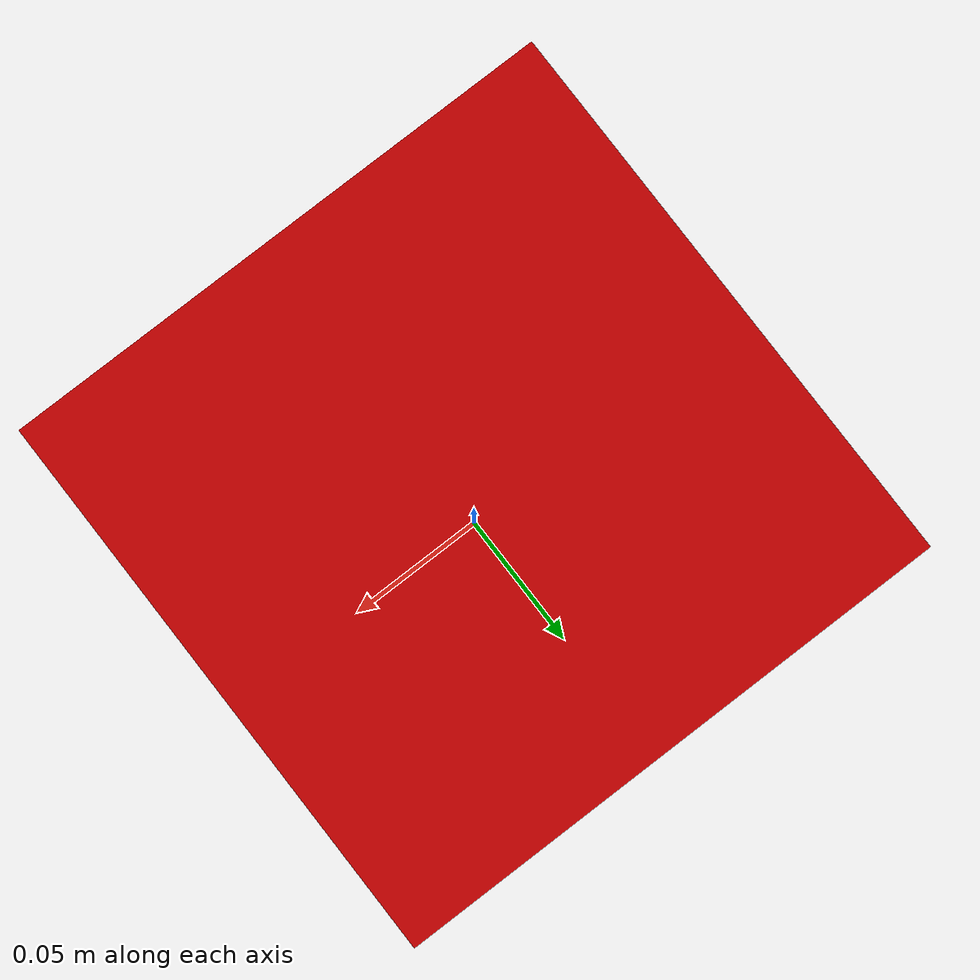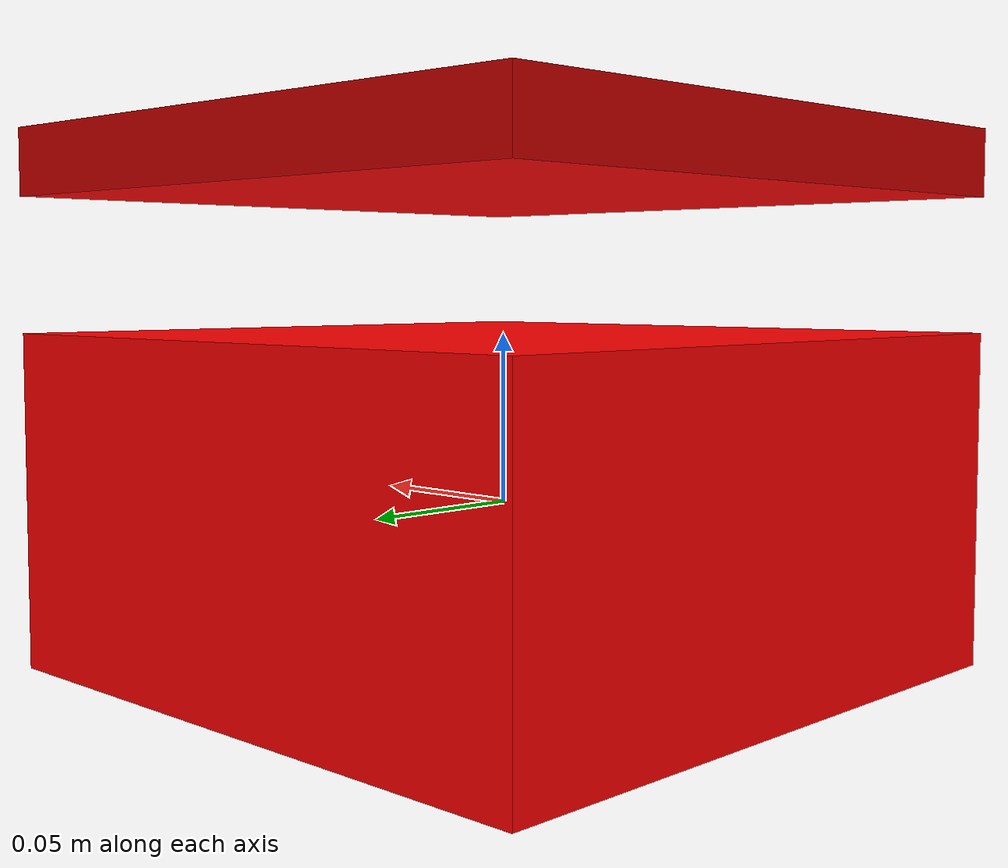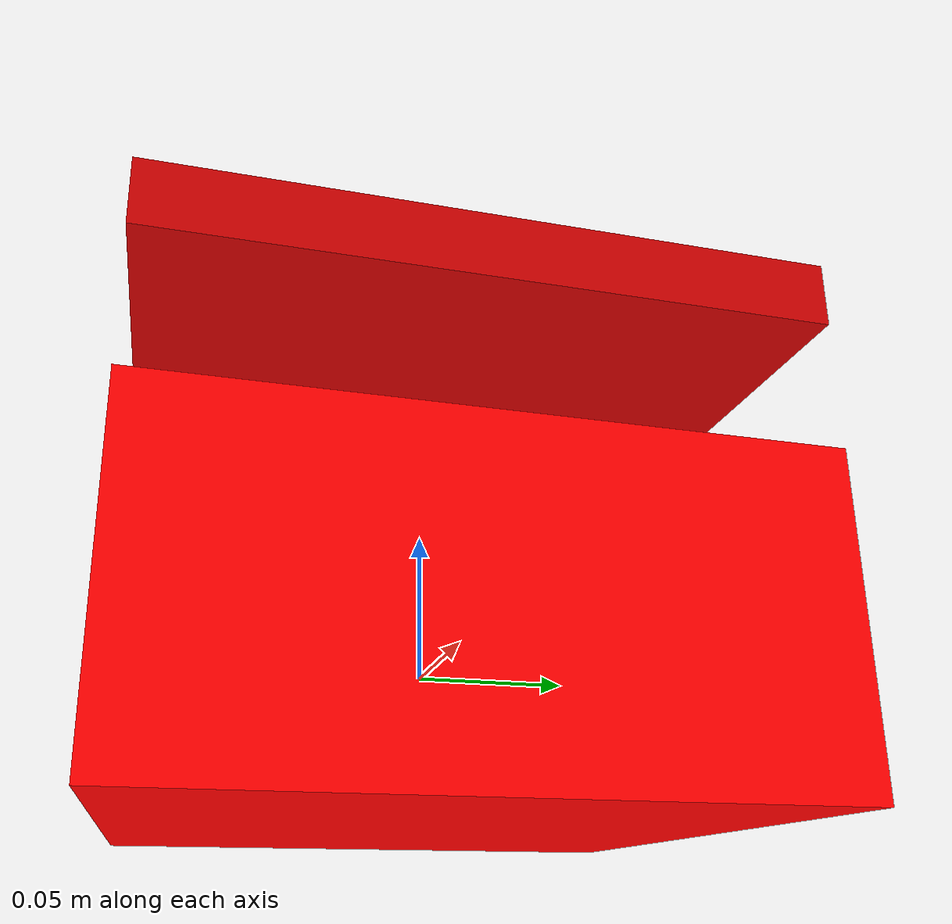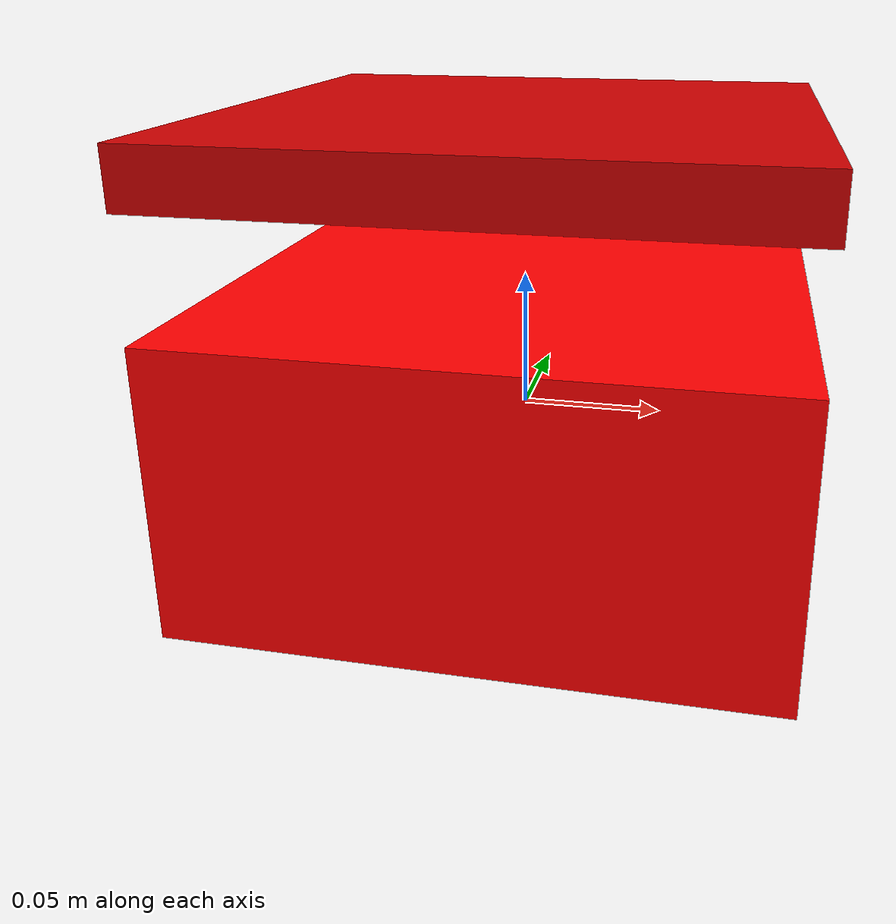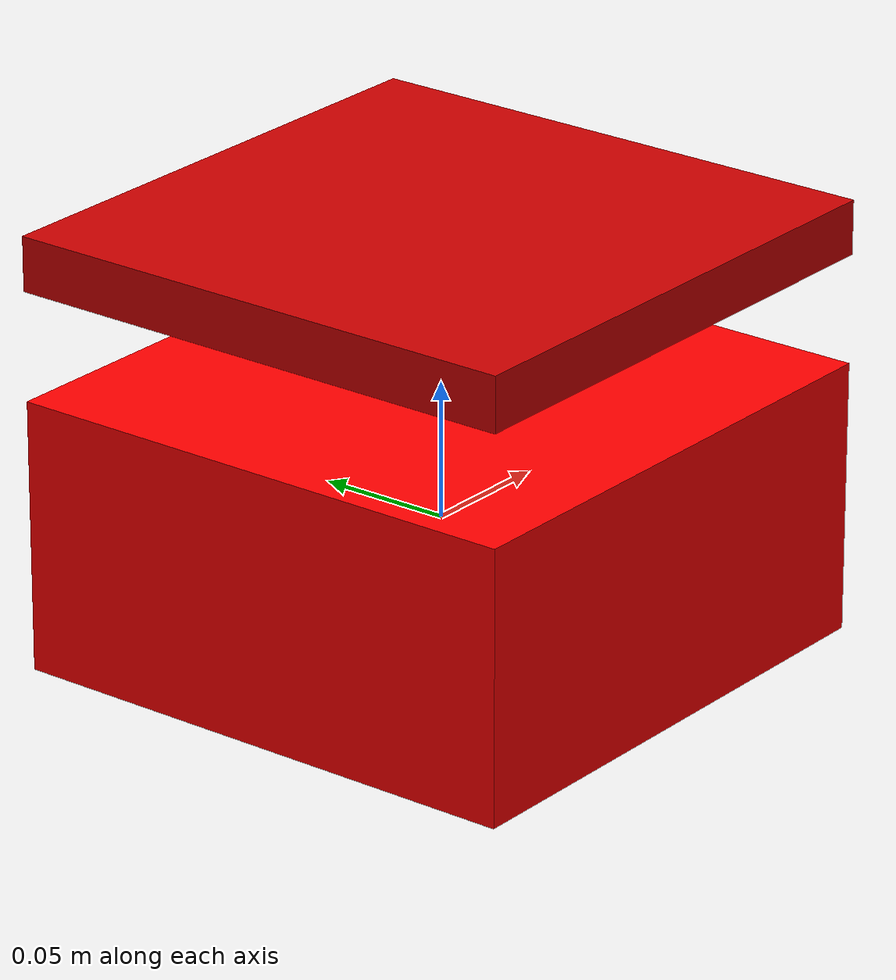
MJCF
<mujoco model="articulated_box">
  <worldbody>
    <body name="box_base" pos="0 0 0">
      <geom name="box_base_geom" type="box" size="0.1 0.1 0.05" rgba="1 0 0 1"/>

      <body name="box_lid" pos="0 0 0.1">
        <joint name="lid_joint" type="hinge" axis="1 0 0" range="0 1.57"/>
        <geom name="box_lid_geom" type="box" size="0.1 0.1 0.01" rgba="0.8 0 0 1"/>
      </body>
    </body>
  </worldbody>
</mujoco>
